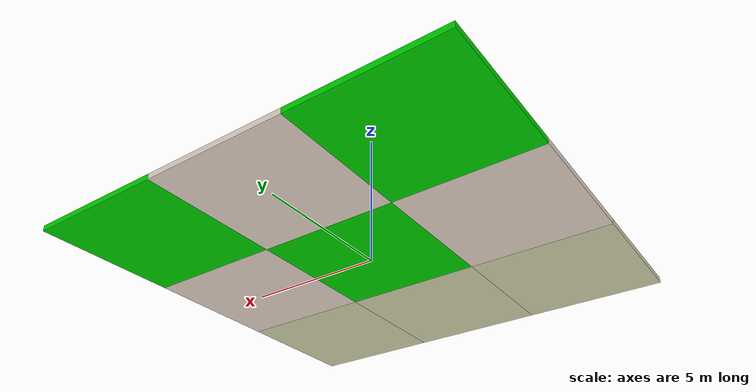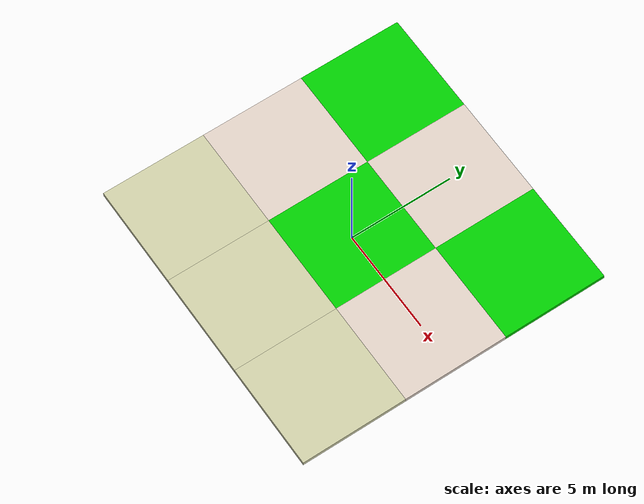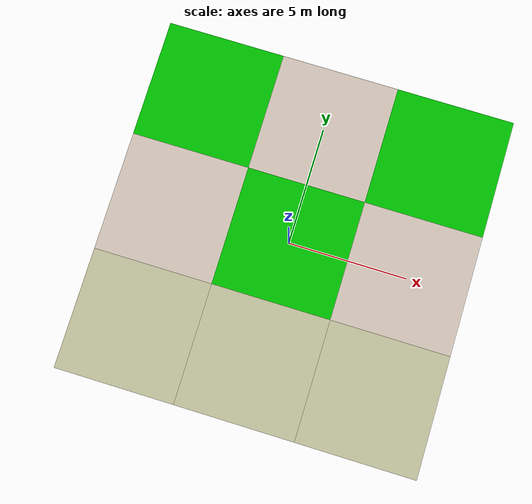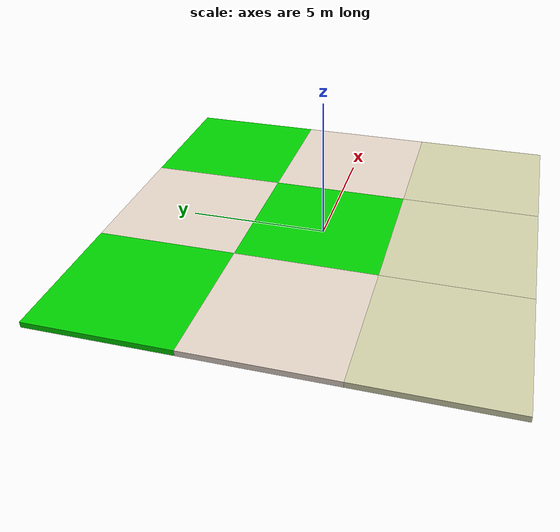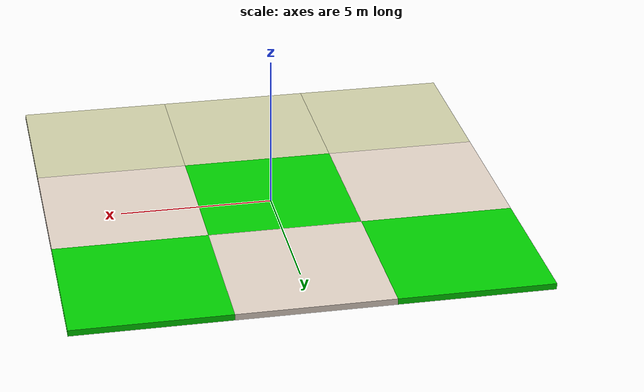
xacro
<?xml version='1.0'?>
<robot xmlns:xacro="http://www.ros.org/wiki/xacro" name="terrain_patches">

	<!--run "rosrun xacro xacro.py terrain_patches.urdf.xacro > terrain_patches.urdf" to copy this .urdf.xacro to a .urdf-->

	<!--general infrastructure loosely follows http://gazebosim.org/tutorials/?tut=ros_urdf for urdf use in Gazebo. -->

	<!--Properties-->
	<xacro:property name="x_width" value="5" /> <!--dimension of blocks in x-->
	<xacro:property name="y_length" value="5" /> <!--dimension of blocks in y-->
	<xacro:property name="z_height" value="0.2"/> <!--dimension of blocks in z-->

	<xacro:property name="body_mass" value="500" /> <!--arbitrarily large mass-->
	<xacro:property name="inertia_coeff" value="${(1/12)*body_mass}"/>

	<!-- Import Rviz colors -->
	<xacro:include filename="$(find terrain_patches)/urdf/materials.xacro" />

	<!--Macros-->
	<xacro:macro name="default_inertial">
		<inertial>
			<mass value="${body_mass}" />
			<inertia
				ixx="${inertia_coeff*(pow(z_height,2) + pow(y_length,2))}" ixy="0" ixz="0"
				iyy="${inertia_coeff*(pow(z_height,2) + pow(x_width,2))}" iyz="0"
				izz="${inertia_coeff*(pow(x_width,2) + pow(y_length,2))}"/>
		</inertial>
	</xacro:macro>
	<xacro:macro name="fixed_joint_macro" params="xyz name parent child">
		<joint name="${name}" type="prismatic">
			<parent link="${parent}"/>
			<child link="${child}"/>
			<origin rpy="0 0 0" xyz="${xyz}"/>
			<axis xyz="0 0 1"/>
			<limit effort="-1" lower="-0.0001" upper="0.0001" velocity="-1"/>
		</joint>
	</xacro:macro>
	<xacro:macro name="friction_macro" params="mu mu2 min_depth kp kd rc thresh">
		<surface>
			<!--http://sdformat.org/spec?ver=1.5&elem=collision#bullet_friction for more; very helpful-->
			<friction>
				<!--mu Coulomb friction in one direction-->
				<!--mu2 Coulomb friction perpendicular-->
				<!--fdir1 direction of mu-->
				<ode
					mu="${mu}"
					mu2="${mu2}"
					fdir1="1 0 0"
					slip1="0.0"
					slip2="0.0"
				/>
			</friction>
			<contact>
				<!--kp stiffness; 1e12 default-->
				<!--kd damping; 1 default-->
				<ode
					min_depth="${min_depth}"
					kp="${kp}"
					kd="${kd}"
				/>
			</contact>
			<!--rc is "bounciness"; 0-1-->
			<!--capture velocity below which effective
			restitution is 0; 100000 default-->
			<bounce
				restitution_coefficient="${rc}"
				threshold="${thresh}"
			/>
		</surface>
	</xacro:macro>
	<xacro:macro name="link_macro" params="xyz name mu mu2 min_depth kp kd rc thresh color">
		<link name="${name}">
			<xacro:default_inertial />
			<collision>
				<origin rpy="0 0 0" xyz="${xyz}"/>
				<geometry>
					<box size="${x_width} ${y_length} ${z_height}" />
				</geometry>
				<xacro:friction_macro mu="${mu}" mu2="${mu2}" min_depth="${min_depth}" kp="${kp}" kd="${kd}" rc="${rc}" thresh="${thresh}"/>
			</collision>
			<visual>
				<origin rpy="0 0 0" xyz="${xyz}"/>
				<geometry>
					<box size="${x_width} ${y_length} ${z_height}" />
				</geometry>
				<material name="${color}"/>
			</visual>

		</link>
	</xacro:macro>
	<xacro:macro name="block_macro" params="name name2 xyz xyz2 parent child mu mu2 min_depth kp kd rc thresh color">
		<xacro:link_macro name="${name}" xyz="${xyz}" mu="${mu}" mu2="${mu2}" min_depth="${min_depth}" kp="${kp}" kd="${kd}" rc="${rc}" thresh="${thresh}" color="${color}"/>

		<xacro:fixed_joint_macro
				name="${name2}" xyz="${xyz2}"
				parent="${parent}" child="${child}"/>
	</xacro:macro>

	<!--Construction of blocks-->
	<!--Gazebo colors and plugins specified in terrain_patches_plugin.gazebo-->
	<link name="world"/>
	<joint name="world_to_base_link" type="fixed">
		<parent link="world"/>
		<child link="base_link"/>
	</joint>

	<!-- Block1 -->
	<xacro:link_macro
				name="base_link" xyz="0 0 ${z_height}"
				mu="0.3" mu2="0.3" min_depth="0.01"
				kp="1e8" kd="0.2" rc="0.00001" thresh="10"
				color="green"/>
	<!-- Block2 -->
	<xacro:block_macro
				name="block_x1y0" xyz="${x_width/2} 0 ${z_height}"
				name2="block_x1y0_joint" xyz2="${(1/2)*x_width} 0 0"
				parent="base_link" child="block_x1y0"
				mu="0.6" mu2="0.6" min_depth="0.03"
				kp="1e8" kd="0.3" rc="0.000000" thresh="100000"
				color="brown"/>
	<!-- Block3 -->
	<xacro:block_macro
				name="block_x1y1" xyz="${x_width/2} ${y_length/2} ${z_height}"
				name2="block_x1y1_joint" xyz2="0 ${(1/2)*y_length} 0"
				parent="block_x1y0" child="block_x1y1"
				mu="0.1" mu2="0.1" min_depth="0.1"
				kp="1e8" kd="0.7" rc="0.001" thresh="100000"
				color="green"/>
	<!-- Block4 -->
	<xacro:block_macro
				name="block_x0y1" xyz="0 ${y_length/2} ${z_height}"
				name2="block_x0y1_joint" xyz2="${(-1/2)*x_width} 0 0"
				parent="block_x1y1" child="block_x0y1"
				mu="0.5" mu2="0.5" min_depth="0.00001"
				kp="1e8" kd="0.01" rc="0.00001" thresh="100000"
				color="brown"/>
	<!-- Block5 -->
	<xacro:block_macro
				name="block_-x1y1" xyz="${-x_width/2} ${y_length/2} ${z_height}"
				name2="block_-x1y1_joint" xyz2="${(-1/2)*x_width} 0 0"
				parent="block_x0y1" child="block_-x1y1"
				mu="0.5" mu2="0.5" min_depth="0.00001"
				kp="1e8" kd="0.01" rc="0.00001" thresh="100000"
				color="green"/>
	<!-- Block6 -->
	<xacro:block_macro
				name="block_-x1y0" xyz="${-x_width/2} 0 ${z_height}"
				name2="block_-x1y0_joint" xyz2="0 ${(-1/2)*y_length} 0"
				parent="block_-x1y1" child="block_-x1y0"
				mu="0.5" mu2="0.5" min_depth="0.00001"
				kp="1e8" kd="0.01" rc="0.00001" thresh="100000"
				color="brown"/>
	<!-- Block7 -->
	<xacro:block_macro
				name="block_-x1-y1" xyz="${-x_width/2} ${-y_length/2} ${z_height}"
				name2="block_-x1-y1_joint" xyz2="0 ${(-1/2)*y_length} 0"
				parent="block_-x1y0" child="block_-x1-y1"
				mu="0.5" mu2="0.5" min_depth="0.00001"
				kp="1e8" kd="0.01" rc="0.00001" thresh="100000"
				color="tan"/>
	<!-- Block8 -->
	<xacro:block_macro
				name="block_x0-y1" xyz="0 ${-y_length/2} ${z_height}"
				name2="block_x0-y1_joint" xyz2="${(1/2)*x_width} 0 0"
				parent="block_-x1-y1" child="block_x0-y1"
				mu="0.5" mu2="0.5" min_depth="0.00001"
				kp="1e8" kd="0.01" rc="0.00001" thresh="100000"
				color="tan"/>
	<!-- Block9 -->
	<xacro:block_macro
				name="block_x1-y1" xyz="${x_width/2} ${-y_length/2} ${z_height}"
				name2="block_x1-y1_joint" xyz2="${(1/2)*x_width} 0 0"
				parent="block_x0-y1" child="block_x1-y1"
				mu="0.5" mu2="0.5" min_depth="0.00001"
				kp="1e8" kd="0.01" rc="0.00001" thresh="100000"
				color="tan"/>

	<!-- ros_control plugin -->
	<gazebo>
		<plugin name="gazebo_ros_control" filename="libgazebo_ros_control.so">
			<robotNamespace>/terrain_patches</robotNamespace>
			<robotSimType>gazebo_ros_control/DefaultRobotHWSim</robotSimType>
		</plugin>
	</gazebo>

	<!-- Specifying Gazebo Colors -->
	<!-- Block1 -->
	<gazebo reference="base_link">
		<material>Gazebo/Grass</material>
	</gazebo>

	<!-- Block2 -->
	<gazebo reference="block_x1y0">
		<material>Gazebo/Tertiary</material>
	</gazebo>

	<!-- Block3 -->
	<gazebo reference="block_x1y1">
		<material>Gazebo/Grass</material>
	</gazebo>

	<!-- Block4 -->
	<gazebo reference="block_x0y1">
		<material>Gazebo/Tertiary</material>
	</gazebo>

	<!-- Block5 -->
	<gazebo reference="block_-x1y1">
		<material>Gazebo/Grass</material>
	</gazebo>

	<!-- Block6 -->
	<gazebo reference="block_-x1y0">
		<material>Gazebo/Tertiary</material>
	</gazebo>

	<!-- Block7 -->
	<gazebo reference="block_-x1-y1">
		<material>Gazebo/Gold</material>
	</gazebo>

	<!-- Block8 -->
	<gazebo reference="block_x0-y1">
		<material>Gazebo/Gold</material>
	</gazebo>

	<!-- Block9 -->
	<gazebo reference="block_x1-y1">
		<material>Gazebo/Gold</material>
	</gazebo>

</robot>

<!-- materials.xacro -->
<robot>

  <material name="black">
    <color rgba="0.0 0.0 0.0 1.0"/>
  </material>

  <material name="blue">
    <color rgba="0.0 0.0 0.8 1.0"/>
  </material>

  <material name="green">
    <color rgba="0.0 0.8 0.0 1.0"/>
  </material>

  <material name="tan">
  	<color rgba="0.8 0.8 0.65 1.0"/>
  </material>

  <material name="grey">
    <color rgba="0.2 0.2 0.2 1.0"/>
  </material>

  <material name="orange">
    <color rgba="${255/255} ${108/255} ${10/255} 1.0"/>
  </material>

  <material name="brown">
    <color rgba="${222/255} ${207/255} ${195/255} 1.0"/>
  </material>

  <material name="red">
    <color rgba="0.8 0.0 0.0 1.0"/>
  </material>

  <material name="white">
    <color rgba="1.0 1.0 1.0 1.0"/>
  </material>

</robot>
